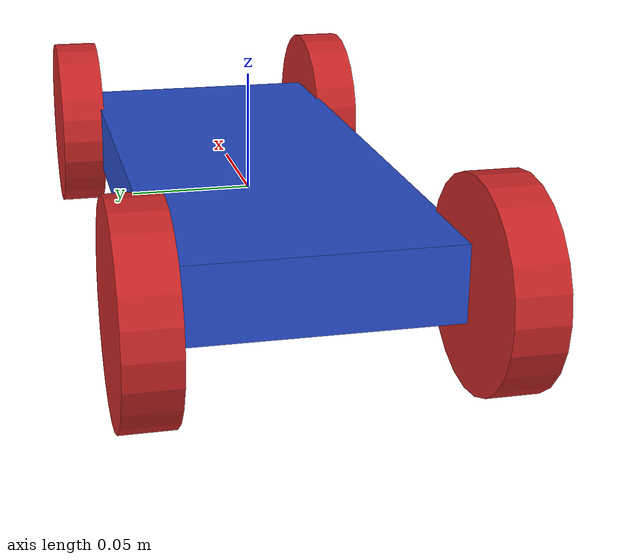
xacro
<?xml version="1.0"?>

<robot name="my_robot" xmlns:xacro="http://www.ros.org/wiki/xacro">
  <xacro:include filename="$(find ackermann)/urdf/cylinder_wheel.urdf.xacro"/>
  <xacro:include filename="$(find ackermann)/urdf/sterzanti.xacro"/>

  <!--PROPERTY LIST-->
  <!--All units in m-kg-s-radians unit system -->
  <xacro:property name="M_PI" value="3.1415926535897931"/>
  <xacro:property name="M_PI_2" value="1.570796327"/>
  <xacro:property name="DEG_TO_RAD" value="0.017453293"/>
  <!--Main Body cylinder base -->
  <xacro:property name="base_height" value="0.2"/>
  <xacro:property name="base_radius" value="0.15"/>
  <xacro:property name="base_mass" value="5"/> <!-- in kg -->
  <!-- Caster wheel -->
  <xacro:property name="caster_height" value="0.04"/>
  <xacro:property name="caster_radius" value="0.025"/>
  <xacro:property name="caster_mass" value="0.5"/>

  <link name="base_link">
    <visual>
      <geometry>
      <box size="0.25 0.110 0.03" />
      </geometry>
      <origin rpy="0 0 0" xyz="0 0 0"/>
      <material name="blue"/>
    </visual>
    <collision>
      <geometry>
      <box size="0.25 0.110 0.03" />
      </geometry>
    </collision>
      <inertial>
        <mass value="${base_mass}" />
        <cylinder_inertia m="${base_mass}" r="${base_radius}" h="${base_height}"/>
      </inertial>
  </link>

  <cylinder_wheel fb="rear" lr="right" parent="base_link" translateX="-0.5" translateY="0.212" flipY="1"/>
  <cylinder_wheel fb="rear" lr="left" parent="base_link" translateX="-0.5" translateY="-0.212" flipY="1"/>

  <cylinder_steering_wheel fb="front" lr="right" parent="base_link" translateX="0.5" translateY="0.212" flipY="1"/>
  <cylinder_steering_wheel fb="front" lr="left" parent="base_link" translateX="0.5" translateY="-0.212" flipY="1"/>

  <gazebo>
    <plugin name="gazebo_ros_control" filename="libgazebo_ros_control.so">
    <robotNamespace>/</robotNamespace>
    </plugin>
  </gazebo>

  </robot>

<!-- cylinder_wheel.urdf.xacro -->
<robot name="ackermann" xmlns:xacro="http://www.ros.org/wiki/xacro">

  <!-- Wheels -->
  <xacro:property name="wheel_radius" value="0.04" />
  <xacro:property name="wheel_height" value="0.04" />
  <xacro:property name="wheel_mass" value="2.5" /> <!-- in kg-->

  <xacro:property name="base_x_origin_to_wheel_origin" value="0.25" />
  <xacro:property name="base_y_origin_to_wheel_origin" value="0.3" />
  <xacro:property name="base_z_origin_to_wheel_origin" value="0.0" />

  <xacro:macro name="cylinder_inertia" params="m r h">
    <inertia  ixx="${m*(3*r*r+h*h)/12}" ixy = "0" ixz = "0"
              iyy="${m*(3*r*r+h*h)/12}" iyz = "0"
              izz="${m*r*r/2}" />
  </xacro:macro>

  <xacro:macro name="cylinder_wheel" params="fb lr parent translateX translateY flipY"> <!--fb : front, back ; lr: left, right -->
    <link name="${fb}_${lr}_wheel">
      <visual>
        <origin xyz="0 0 0" rpy="${flipY*M_PI/2} 0  0 " />
        <geometry>
          <cylinder length="${wheel_height}" radius="${wheel_radius}" />
        </geometry>
        <material name="Red" />
      </visual>
      <collision>
        <origin xyz="0 0 0" rpy="${flipY*M_PI/2} 0 0 " />
        <geometry>
          <cylinder length="${wheel_height}" radius="${wheel_radius}" />
        </geometry>
      </collision>
      <inertial>
        <mass value="${wheel_mass}" />
        <origin xyz="0 0 0" />
        <cylinder_inertia  m="${wheel_mass}" r="${wheel_radius}" h="${wheel_height}" />
      </inertial>
    </link>

    <gazebo reference="${fb}_${lr}_wheel">
      <mu1 value="1.0"/>
      <mu2 value="1.0"/>
      <kp  value="10000000.0" />
      <kd  value="1.0" />
      <fdir1 value="1 0 0"/>
      <material>Gazebo/Grey</material>
      <turnGravityOff>false</turnGravityOff>
    </gazebo>

    <joint name="${fb}_${lr}_wheel_joint" type="continuous">
      <parent link="${parent}"/>
      <child link="${fb}_${lr}_wheel"/>
      <origin xyz="${translateX * base_x_origin_to_wheel_origin} ${translateY * base_y_origin_to_wheel_origin} ${base_z_origin_to_wheel_origin}" rpy="0 0 0" />
      <axis xyz="0 1 0" rpy="0  0" />
      <limit effort="100" velocity="100"/>
      <joint_properties damping="0.0" friction="0.0"/>
    </joint>

    <!-- Transmission is important to link the joints and the controller -->
    <transmission name="${fb}_${lr}_wheel_joint_trans">
      <type>transmission_interface/SimpleTransmission</type>
      <joint name="${fb}_${lr}_wheel_joint">
        <hardwareInterface>hardware_interface/VelocityJointInterface</hardwareInterface>
      </joint>
      <actuator name="${fb}_${lr}_wheel_joint_motor">
        <mechanicalReduction>1</mechanicalReduction>
      </actuator>
    </transmission>

  </xacro:macro>
</robot>

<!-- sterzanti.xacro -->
<robot name="my_robot" xmlns:xacro="http://www.ros.org/wiki/xacro">

  <!-- Wheels -->
  <xacro:property name="wheel_radius" value="0.04" />
  <xacro:property name="wheel_height" value="0.02" />
  <xacro:property name="wheel_mass" value="2.5" /> <!-- in kg-->

  <xacro:property name="base_x_origin_to_wheel_origin" value="0.25" />
  <xacro:property name="base_y_origin_to_wheel_origin" value="0.3" />
  <xacro:property name="base_z_origin_to_wheel_origin" value="0.0" />

  <xacro:macro name="cylinder_inertia" params="m r h">
    <inertia  ixx="${m*(3*r*r+h*h)/12}" ixy = "0" ixz = "0"
              iyy="${m*(3*r*r+h*h)/12}" iyz = "0"
              izz="${m*r*r/2}" />
  </xacro:macro>

  <xacro:macro name="cylinder_steering_wheel" params="fb lr parent translateX translateY flipY"> <!--fb : front, back ; lr: left, right -->
    <link name="${fb}_${lr}_wheel">
      <visual>
        <origin xyz="0 0 0" rpy="${flipY*M_PI/2} 0  0 " />
        <geometry>
          <cylinder length="${wheel_height}" radius="${wheel_radius}" />
        </geometry>
        <material name="Red" />
      </visual>
      <collision>
        <origin xyz="0 0 0" rpy="${flipY*M_PI/2} 0 0 " />
        <geometry>
          <cylinder length="${wheel_height}" radius="${wheel_radius}" />
        </geometry>
      </collision>
      <inertial>
        <mass value="${wheel_mass}" />
        <origin xyz="0 0 0" />
        <cylinder_inertia  m="${wheel_mass}" r="${wheel_radius}" h="${wheel_height}" />
      </inertial>
    </link>

    <gazebo reference="${fb}_${lr}_wheel">
      <mu1 value="1.0"/>
      <mu2 value="1.0"/>
      <kp  value="10000000.0" />
      <kd  value="1.0" />
      <fdir1 value="1 0 0"/>
      <material>Gazebo/Grey</material>
      <turnGravityOff>false</turnGravityOff>
    </gazebo>

    <joint name="${fb}_${lr}_wheel_joint" type="revolute">
      <parent link="${parent}"/>
      <child link="${fb}_${lr}_wheel"/>
      <origin xyz="${translateX * base_x_origin_to_wheel_origin} ${translateY * base_y_origin_to_wheel_origin} ${base_z_origin_to_wheel_origin}" rpy="0 0 0" />
      <axis xyz="0 1 0" rpy="0  0" />
      <limit effort="100" velocity="100"/>
      <joint_properties damping="0.0" friction="0.0"/>
    </joint>

     <!-- Transmission is important to link the joints and the controller -->
    <transmission name="${fb}_${lr}_wheel_joint_trans">
      <type>transmission_interface/SimpleTransmission</type>
      <joint name="${fb}_${lr}_wheel_joint">
        <hardwareInterface>hardware_interface/VelocityJointInterface</hardwareInterface>
      </joint>
      <actuator name="${fb}_${lr}_wheel_joint_motor">
        <mechanicalReduction>1</mechanicalReduction>
      </actuator>
    </transmission>

  </xacro:macro>
</robot>
